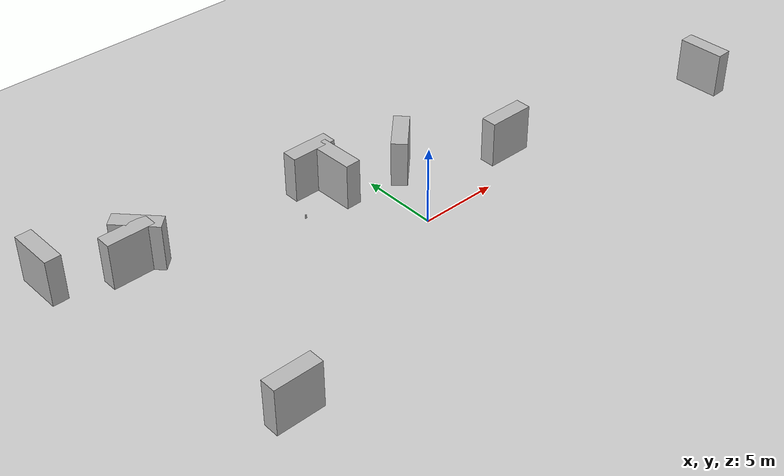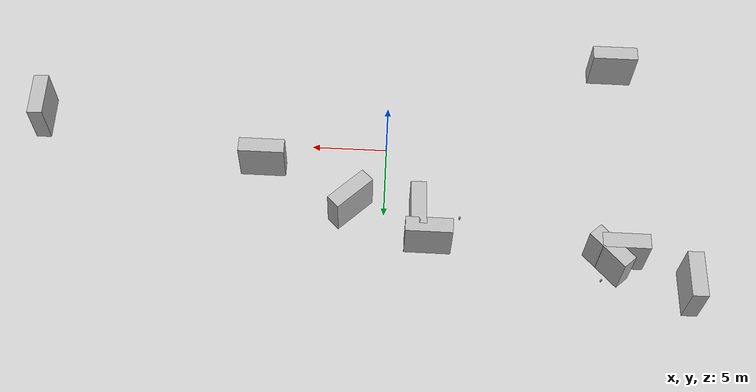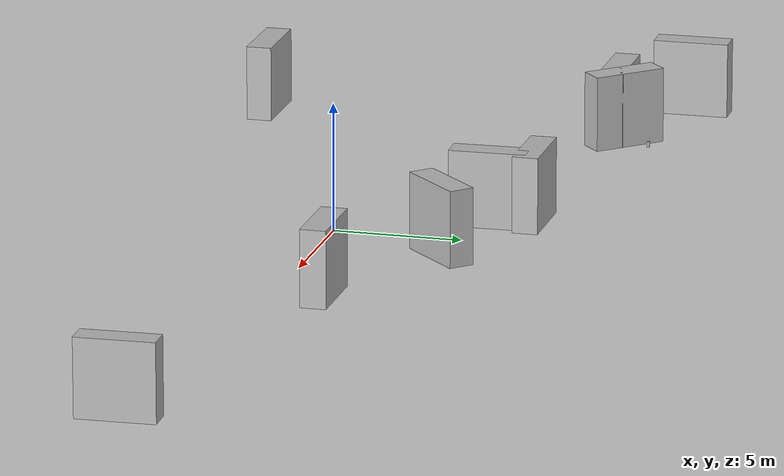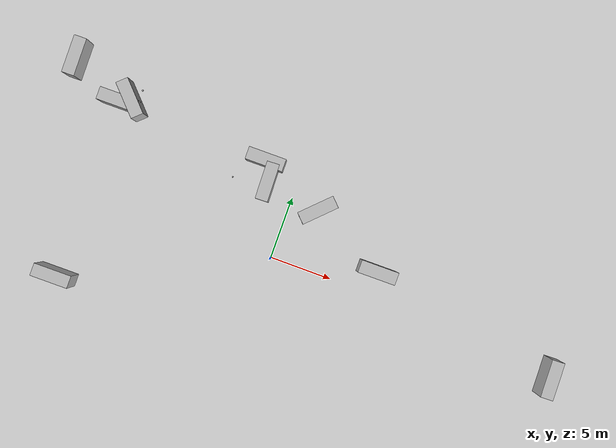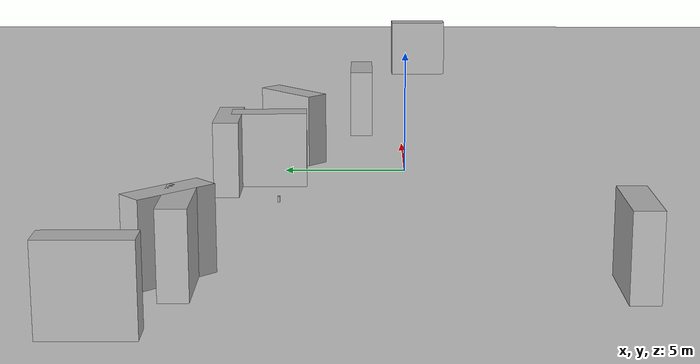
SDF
<sdf version="1.4">
 <world name="default">
  <light name="sun" type="directional">
   <pose>0 0 10 0 -0 0</pose>
   <diffuse>0.8 0.8 0.8 1</diffuse>
   <specular>0.2 0.2 0.2 1</specular>
   <attenuation>
    <range>1000</range>
    <constant>0.9</constant>
    <linear>0.01</linear>
    <quadratic>0.001</quadratic>
   </attenuation>
   <direction>-0.5 0.1 -0.9</direction>
  </light>
  <model name="ground_plane">
   <static>1</static>
   <link name="link">
    <collision name="collision">
     <geometry><plane><normal>0 0 1</normal><size>100 100</size></plane></geometry>
     <surface><friction><ode><mu>100</mu><mu2>50</mu2></ode></friction></surface>
    </collision>
    <visual name="visual">
     <cast_shadows>0</cast_shadows>
     <geometry><plane><normal>0 0 1</normal><size>100 100</size></plane></geometry>
     <material>
      <script><uri>file://media/materials/scripts/gazebo.material</uri><name>Gazebo/Grey</name></script>
     </material>
    </visual>
    <velocity_decay><linear>0</linear><angular>0</angular></velocity_decay>
   </link>
  </model>
  <physics type="ode">
   <max_step_size>0.001</max_step_size>
   <real_time_factor>1</real_time_factor>
   <real_time_update_rate>1000</real_time_update_rate>
   <gravity>0 0 -9.8</gravity>
  </physics>
  <scene><ambient>0.4 0.4 0.4 1</ambient><background>0.7 0.7 0.7 1</background><shadows>1</shadows></scene>
  <model name="brick_box_3x1x3">
   <static>1</static>
   <link name="chassis">
    <pose>0 0 1.5 0 -0 0</pose>
    <collision name="collision"><geometry><box><size>3 1 3</size></box></geometry></collision>
    <visual name="visual">
     <geometry><mesh><uri>model://brick_box_3x1x3/meshes/simple_box.dae</uri><scale>3 1 3</scale></mesh></geometry>
     <material>
      <script>
       <uri>model://brick_box_3x1x3/materials/scripts</uri>
       <uri>model://brick_box_3x1x3/materials/textures</uri>
       <name>BrickBox/Diffuse</name>
      </script>
     </material>
    </visual>
    <velocity_decay><linear>0</linear><angular>0</angular></velocity_decay>
   </link>
   <pose>-15.3483 -6.88797 0 0 -0 0</pose>
  </model>
  <model name="brick_box_3x1x3_0">
   <static>1</static>
   <link name="chassis">
    <pose>0 0 1.5 0 -0 0</pose>
    <collision name="collision"><geometry><box><size>3 1 3</size></box></geometry></collision>
    <visual name="visual">
     <geometry><mesh><uri>model://brick_box_3x1x3/meshes/simple_box.dae</uri><scale>3 1 3</scale></mesh></geometry>
     <material>
      <script>
       <uri>model://brick_box_3x1x3/materials/scripts</uri>
       <uri>model://brick_box_3x1x3/materials/textures</uri>
       <name>BrickBox/Diffuse</name>
      </script>
     </material>
    </visual>
    <velocity_decay><linear>0</linear><angular>0</angular></velocity_decay>
   </link>
   <pose>23.4973 -1.38194 0 0 -0 1.6</pose>
  </model>
  <model name="brick_box_3x1x3_1">
   <static>1</static>
   <link name="chassis">
    <pose>0 0 1.5 0 -0 0</pose>
    <collision name="collision"><geometry><box><size>3 1 3</size></box></geometry></collision>
    <visual name="visual">
     <geometry><mesh><uri>model://brick_box_3x1x3/meshes/simple_box.dae</uri><scale>3 1 3</scale></mesh></geometry>
     <material>
      <script>
       <uri>model://brick_box_3x1x3/materials/scripts</uri>
       <uri>model://brick_box_3x1x3/materials/textures</uri>
       <name>BrickBox/Diffuse</name>
      </script>
     </material>
    </visual>
    <velocity_decay><linear>0</linear><angular>0</angular></velocity_decay>
   </link>
   <pose>-2.19641 5.52117 0 0 -0 1.6</pose>
  </model>
  <model name="brick_box_3x1x3_2">
   <static>1</static>
   <link name="chassis">
    <pose>0 0 1.5 0 -0 0</pose>
    <collision name="collision"><geometry><box><size>3 1 3</size></box></geometry></collision>
    <visual name="visual">
     <geometry><mesh><uri>model://brick_box_3x1x3/meshes/simple_box.dae</uri><scale>3 1 3</scale></mesh></geometry>
     <material>
      <script>
       <uri>model://brick_box_3x1x3/materials/scripts</uri>
       <uri>model://brick_box_3x1x3/materials/textures</uri>
       <name>BrickBox/Diffuse</name>
      </script>
     </material>
    </visual>
    <velocity_decay><linear>0</linear><angular>0</angular></velocity_decay>
   </link>
   <pose>-19.3688 9.58727 0 0 0 -1.56</pose>
  </model>
  <model name="brick_box_3x1x3_3">
   <static>1</static>
   <link name="chassis">
    <pose>0 0 1.5 0 -0 0</pose>
    <collision name="collision"><geometry><box><size>3 1 3</size></box></geometry></collision>
    <visual name="visual">
     <geometry><mesh><uri>model://brick_box_3x1x3/meshes/simple_box.dae</uri><scale>3 1 3</scale></mesh></geometry>
     <material>
      <script>
       <uri>model://brick_box_3x1x3/materials/scripts</uri>
       <uri>model://brick_box_3x1x3/materials/textures</uri>
       <name>BrickBox/Diffuse</name>
      </script>
     </material>
    </visual>
    <velocity_decay><linear>0</linear><angular>0</angular></velocity_decay>
   </link>
   <pose>-15.1722 7.53635 0 0 -0 0</pose>
  </model>
  <model name="brick_box_3x1x3_4">
   <static>1</static>
   <link name="chassis">
    <pose>0 0 1.5 0 -0 0</pose>
    <collision name="collision"><geometry><box><size>3 1 3</size></box></geometry></collision>
    <visual name="visual">
     <geometry><mesh><uri>model://brick_box_3x1x3/meshes/simple_box.dae</uri><scale>3 1 3</scale></mesh></geometry>
     <material>
      <script>
       <uri>model://brick_box_3x1x3/materials/scripts</uri>
       <uri>model://brick_box_3x1x3/materials/textures</uri>
       <name>BrickBox/Diffuse</name>
      </script>
     </material>
    </visual>
    <velocity_decay><linear>0</linear><angular>0</angular></velocity_decay>
   </link>
   <pose>8.17006 1.84031 0 0 -0 0</pose>
  </model>
  <model name="brick_box_3x1x3_5">
   <static>1</static>
   <link name="chassis">
    <pose>0 0 1.5 0 -0 0</pose>
    <collision name="collision"><geometry><box><size>3 1 3</size></box></geometry></collision>
    <visual name="visual">
     <geometry><mesh><uri>model://brick_box_3x1x3/meshes/simple_box.dae</uri><scale>3 1 3</scale></mesh></geometry>
     <material>
      <script>
       <uri>model://brick_box_3x1x3/materials/scripts</uri>
       <uri>model://brick_box_3x1x3/materials/textures</uri>
       <name>BrickBox/Diffuse</name>
      </script>
     </material>
    </visual>
    <velocity_decay><linear>0</linear><angular>0</angular></velocity_decay>
   </link>
   <pose>-14.2834 7.9452 0 0 -0 2.32</pose>
  </model>
  <model name="beer">
   <link name="link">
    <pose>0 0 0.115 0 -0 0</pose>
    <inertial>
     <mass>0.39</mass>
     <inertia><ixx>0.00058</ixx><ixy>0</ixy><ixz>0</ixz><iyy>0.00058</iyy><iyz>0</iyz><izz>0.00019</izz></inertia>
    </inertial>
    <collision name="collision">
     <geometry><cylinder><radius>0.055</radius><length>0.23</length></cylinder></geometry>
    </collision>
    <visual name="visual">
     <geometry><cylinder><radius>0.055</radius><length>0.23</length></cylinder></geometry>
     <material>
      <script>
       <uri>model://beer/materials/scripts</uri>
       <uri>model://beer/materials/textures</uri>
       <name>Beer/Diffuse</name>
      </script>
     </material>
    </visual>
    <velocity_decay><linear>0</linear><angular>0</angular></velocity_decay>
   </link>
   <pose>-14 9 -7e-06 -0 -0 -1.7e-05</pose>
   <static>0</static>
  </model>
  <model name="brick_box_3x1x3_6">
   <static>1</static>
   <link name="chassis">
    <pose>0 0 1.5 0 -0 0</pose>
    <collision name="collision"><geometry><box><size>3 1 3</size></box></geometry></collision>
    <visual name="visual">
     <geometry><mesh><uri>model://brick_box_3x1x3/meshes/simple_box.dae</uri><scale>3 1 3</scale></mesh></geometry>
     <material>
      <script>
       <uri>model://brick_box_3x1x3/materials/scripts</uri>
       <uri>model://brick_box_3x1x3/materials/textures</uri>
       <name>BrickBox/Diffuse</name>
      </script>
     </material>
    </visual>
    <velocity_decay><linear>0</linear><angular>0</angular></velocity_decay>
   </link>
   <pose>-2.8975 7.09036 0 0 -0 0</pose>
  </model>
  <model name="brick_box_3x1x3_7">
   <static>1</static>
   <link name="chassis">
    <pose>0 0 1.5 0 -0 0</pose>
    <collision name="collision"><geometry><box><size>3 1 3</size></box></geometry></collision>
    <visual name="visual">
     <geometry><mesh><uri>model://brick_box_3x1x3/meshes/simple_box.dae</uri><scale>3 1 3</scale></mesh></geometry>
     <material>
      <script>
       <uri>model://brick_box_3x1x3/materials/scripts</uri>
       <uri>model://brick_box_3x1x3/materials/textures</uri>
       <name>BrickBox/Diffuse</name>
      </script>
     </material>
    </visual>
    <velocity_decay><linear>0</linear><angular>0</angular></velocity_decay>
   </link>
   <pose>2.19678 4.76205 0 0 0 -2.36</pose>
  </model>
  <model name="beer_0">
   <link name="link">
    <pose>0 0 0.115 0 -0 0</pose>
    <inertial>
     <mass>0.39</mass>
     <inertia><ixx>0.00058</ixx><ixy>0</ixy><ixz>0</ixz><iyy>0.00058</iyy><iyz>0</iyz><izz>0.00019</izz></inertia>
    </inertial>
    <collision name="collision">
     <geometry><cylinder><radius>0.055</radius><length>0.23</length></cylinder></geometry>
    </collision>
    <visual name="visual">
     <geometry><cylinder><radius>0.055</radius><length>0.23</length></cylinder></geometry>
     <material>
      <script>
       <uri>model://beer/materials/scripts</uri>
       <uri>model://beer/materials/textures</uri>
       <name>Beer/Diffuse</name>
      </script>
     </material>
    </visual>
    <velocity_decay><linear>0</linear><angular>0</angular></velocity_decay>
   </link>
   <pose>-5 5 -2e-06 1e-06 -0 -1.3e-05</pose>
   <static>0</static>
  </model>
 </world>
</sdf>
